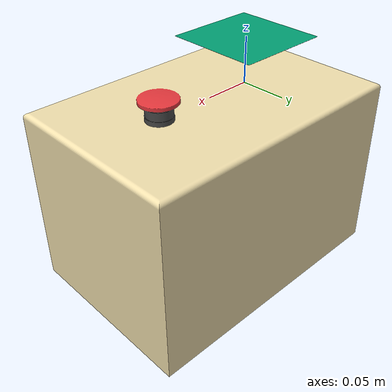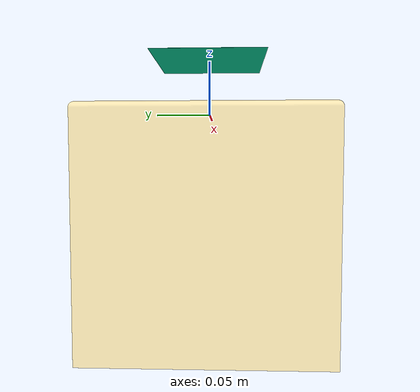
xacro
<?xml version="1.0"?>
<robot name="box" xmlns:xacro="http://ros.org/wiki/xacro">

  <link name="box_world"/>
<!--Box with button-->
  <link name="box">
    <visual>
      <origin rpy="0 0 0" xyz="0 0 0"/>
      <geometry>
        <mesh filename="package://manipulator-control/meshes/box.dae"/>
      </geometry>
    </visual>
    <collision>
      <origin rpy="0 0 0" xyz="0 0 0"/>
      <geometry>
        <mesh filename="package://manipulator-control/meshes/box.dae"/>
      </geometry>
    </collision>
    <inertial>
      <origin rpy="0 0 0" xyz="-0.05 0 -0.1118034"/>
      <mass value="4.91945127"/>
      <inertia ixx="5.60655457e-2" ixy="0" ixz="8.97336882e-5" iyx="0" iyy="8.24486898e-2" iyz="0" izx="8.97336882e-5" izy="0" izz="8.24038911e-2"/>
    </inertial>
  </link>

  <joint name="box_joint" type="fixed">
    <parent link="box_world"/>
    <child link="box"/>
    <origin rpy="0 0 3.14" xyz="0 0 0"/>
  </joint>

  <link name="artag4">
    <visual>
      <origin rpy="0 0 0" xyz="0 0 0"/>
      <geometry>
        <mesh filename="package://manipulator-control/meshes/tag.dae"/>
      </geometry>
    </visual>
    <collision>
      <origin rpy="0 0 0" xyz="0 0 0"/>
      <geometry>
        <mesh filename="package://manipulator-control/meshes/tag.dae"/>
      </geometry>
    </collision>
    <inertial>
      <origin rpy="0 0 0" xyz="0 0 0"/>
      <mass value="0.01052000"/>
      <inertia ixx="8.76754333e-6" ixy="0" ixz="0" iyx="0" iyy="8.76754333e-6" iyz="0" izx="0" izy="0" izz="1.75333333e-5"/>
    </inertial>
  </link>
  <joint name="tag_joint" type="fixed">
    <parent link="box"/>
    <child link="artag4"/>
    <origin rpy="0 0 -1.571" xyz="0 0 0.05"/>
  </joint>

  <link name="button"/>
  <joint name="button" type="fixed">
    <parent link="artag4"/>
    <child link="button"/>
    <origin rpy="0.0 1.5708 3.14" xyz="-0.12 0.0 0.03"/>
  </joint>

</robot>
